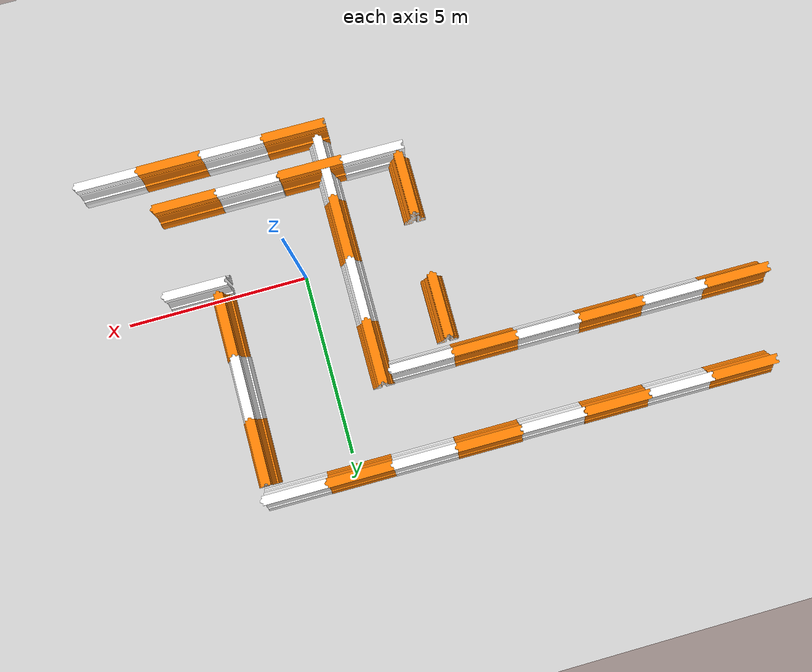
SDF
<sdf version="1.7">
 <world name="default">
  <model name="ground_plane">
   <static>1</static>
   <link name="link">
    <collision name="collision">
     <geometry><plane><normal>0 0 1</normal><size>100 100</size></plane></geometry>
     <surface><friction><ode><mu>100</mu><mu2>50</mu2></ode></friction></surface>
    </collision>
    <visual name="visual">
     <cast_shadows>0</cast_shadows>
     <geometry><plane><normal>0 0 1</normal><size>100 100</size></plane></geometry>
     <material>
      <script><uri>file://media/materials/scripts/gazebo.material</uri><name>Gazebo/Grey</name></script>
     </material>
    </visual>
   </link>
  </model>
  <model name="drc_practice_organge_jersey_barrier_1_clone">
   <static>1</static>
   <link name="link">
    <visual name="visual">
     <geometry>
      <mesh><uri>model://drc_practice_orange_jersey_barrier/meshes/jersey_barrier.dae</uri></mesh>
     </geometry>
    </visual>
    <collision name="collision">
     <geometry>
      <mesh><uri>model://drc_practice_orange_jersey_barrier/meshes/jersey_barrier.dae</uri></mesh>
     </geometry>
    </collision>
   </link>
   <pose>2.57818 -2.69671 0 0 -0 1.5707</pose>
  </model>
  <model name="drc_practice_white_jersey_barrier_clone">
   <static>1</static>
   <link name="link">
    <visual name="visual">
     <geometry>
      <mesh><uri>model://drc_practice_white_jersey_barrier/meshes/jersey_barrier.dae</uri></mesh>
     </geometry>
    </visual>
    <collision name="collision">
     <geometry>
      <mesh><uri>model://drc_practice_white_jersey_barrier/meshes/jersey_barrier.dae</uri></mesh>
     </geometry>
    </collision>
   </link>
   <pose>0.829118 -2.69359 0 0 -0 1.5707</pose>
  </model>
  <model name="drc_practice_organge_jersey_barrier_1_clone_clone">
   <static>1</static>
   <link name="link">
    <visual name="visual">
     <geometry>
      <mesh><uri>model://drc_practice_orange_jersey_barrier/meshes/jersey_barrier.dae</uri></mesh>
     </geometry>
    </visual>
    <collision name="collision">
     <geometry>
      <mesh><uri>model://drc_practice_orange_jersey_barrier/meshes/jersey_barrier.dae</uri></mesh>
     </geometry>
    </collision>
   </link>
   <pose>-0.942221 -2.70037 0 0 -0 1.5707</pose>
  </model>
  <model name="drc_practice_organge_jersey_barrier_0_clone_0">
   <static>1</static>
   <link name="link">
    <visual name="visual">
     <geometry>
      <mesh><uri>model://drc_practice_orange_jersey_barrier/meshes/jersey_barrier.dae</uri></mesh>
     </geometry>
    </visual>
    <collision name="collision">
     <geometry>
      <mesh><uri>model://drc_practice_orange_jersey_barrier/meshes/jersey_barrier.dae</uri></mesh>
     </geometry>
    </collision>
   </link>
   <pose>-3.31318 1.87553 0 0 -0 0</pose>
  </model>
  <model name="drc_practice_white_jersey_barrier_clone_clone_0">
   <static>1</static>
   <link name="link">
    <visual name="visual">
     <geometry>
      <mesh><uri>model://drc_practice_white_jersey_barrier/meshes/jersey_barrier.dae</uri></mesh>
     </geometry>
    </visual>
    <collision name="collision">
     <geometry>
      <mesh><uri>model://drc_practice_white_jersey_barrier/meshes/jersey_barrier.dae</uri></mesh>
     </geometry>
    </collision>
   </link>
   <pose>-2.67869 -2.67276 0 0 -0 1.5707</pose>
  </model>
  <model name="drc_practice_organge_jersey_barrier_0_clone_clone">
   <static>1</static>
   <link name="link">
    <visual name="visual">
     <geometry>
      <mesh><uri>model://drc_practice_orange_jersey_barrier/meshes/jersey_barrier.dae</uri></mesh>
     </geometry>
    </visual>
    <collision name="collision">
     <geometry>
      <mesh><uri>model://drc_practice_orange_jersey_barrier/meshes/jersey_barrier.dae</uri></mesh>
     </geometry>
    </collision>
   </link>
   <pose>2.31138 0.862878 0 0 -0 0</pose>
  </model>
  <model name="drc_practice_white_jersey_barrier_clone_0_clone">
   <static>1</static>
   <link name="link">
    <visual name="visual">
     <geometry>
      <mesh><uri>model://drc_practice_white_jersey_barrier/meshes/jersey_barrier.dae</uri></mesh>
     </geometry>
    </visual>
    <collision name="collision">
     <geometry>
      <mesh><uri>model://drc_practice_white_jersey_barrier/meshes/jersey_barrier.dae</uri></mesh>
     </geometry>
    </collision>
   </link>
   <pose>2.30247 2.60242 0 0 -0 0</pose>
  </model>
  <model name="drc_practice_white_jersey_barrier_clone_clone_clone">
   <static>1</static>
   <link name="link">
    <visual name="visual">
     <geometry>
      <mesh><uri>model://drc_practice_white_jersey_barrier/meshes/jersey_barrier.dae</uri></mesh>
     </geometry>
    </visual>
    <collision name="collision">
     <geometry>
      <mesh><uri>model://drc_practice_white_jersey_barrier/meshes/jersey_barrier.dae</uri></mesh>
     </geometry>
    </collision>
   </link>
   <pose>2.86919 -0.302325 0 0 -0 1.5707</pose>
  </model>
  <model name="drc_practice_organge_jersey_barrier_0_clone_0_clone_clone">
   <static>1</static>
   <link name="link">
    <visual name="visual">
     <geometry>
      <mesh><uri>model://drc_practice_orange_jersey_barrier/meshes/jersey_barrier.dae</uri></mesh>
     </geometry>
    </visual>
    <collision name="collision">
     <geometry>
      <mesh><uri>model://drc_practice_orange_jersey_barrier/meshes/jersey_barrier.dae</uri></mesh>
     </geometry>
    </collision>
   </link>
   <pose>-1.31687 -0.878506 0 0 -0 0</pose>
  </model>
  <model name="drc_practice_white_jersey_barrier_clone_1_clone">
   <static>1</static>
   <link name="link">
    <visual name="visual">
     <geometry>
      <mesh><uri>model://drc_practice_white_jersey_barrier/meshes/jersey_barrier.dae</uri></mesh>
     </geometry>
    </visual>
    <collision name="collision">
     <geometry>
      <mesh><uri>model://drc_practice_white_jersey_barrier/meshes/jersey_barrier.dae</uri></mesh>
     </geometry>
    </collision>
   </link>
   <pose>-1.31231 0.867307 0 0 -0 0</pose>
  </model>
  <model name="drc_practice_organge_jersey_barrier_0_clone_0_clone">
   <static>1</static>
   <link name="link">
    <visual name="visual">
     <geometry>
      <mesh><uri>model://drc_practice_orange_jersey_barrier/meshes/jersey_barrier.dae</uri></mesh>
     </geometry>
    </visual>
    <collision name="collision">
     <geometry>
      <mesh><uri>model://drc_practice_orange_jersey_barrier/meshes/jersey_barrier.dae</uri></mesh>
     </geometry>
    </collision>
   </link>
   <pose>-3.33024 -1.58529 0 0 -0 0</pose>
  </model>
  <model name="drc_practice_organge_jersey_barrier_0_clone_0_clone_0">
   <static>1</static>
   <link name="link">
    <visual name="visual">
     <geometry>
      <mesh><uri>model://drc_practice_orange_jersey_barrier/meshes/jersey_barrier.dae</uri></mesh>
     </geometry>
    </visual>
    <collision name="collision">
     <geometry>
      <mesh><uri>model://drc_practice_orange_jersey_barrier/meshes/jersey_barrier.dae</uri></mesh>
     </geometry>
    </collision>
   </link>
   <pose>-1.3008 2.61343 0 0 -0 0</pose>
  </model>
  <model name="drc_practice_white_jersey_barrier_clone_1_clone_clone">
   <static>1</static>
   <link name="link">
    <visual name="visual">
     <geometry>
      <mesh><uri>model://drc_practice_white_jersey_barrier/meshes/jersey_barrier.dae</uri></mesh>
     </geometry>
    </visual>
    <collision name="collision">
     <geometry>
      <mesh><uri>model://drc_practice_white_jersey_barrier/meshes/jersey_barrier.dae</uri></mesh>
     </geometry>
    </collision>
   </link>
   <pose>-1.32394 -2.62974 0 0 -0 0</pose>
  </model>
  <model name="drc_practice_organge_jersey_barrier_1_clone_clone_clone_clone">
   <static>1</static>
   <link name="link">
    <visual name="visual">
     <geometry>
      <mesh><uri>model://drc_practice_orange_jersey_barrier/meshes/jersey_barrier.dae</uri></mesh>
     </geometry>
    </visual>
    <collision name="collision">
     <geometry>
      <mesh><uri>model://drc_practice_orange_jersey_barrier/meshes/jersey_barrier.dae</uri></mesh>
     </geometry>
    </collision>
   </link>
   <pose>-0.767726 -3.83305 0 0 -0 1.5707</pose>
  </model>
  <model name="drc_practice_white_jersey_barrier_clone_clone_1">
   <static>1</static>
   <link name="link">
    <visual name="visual">
     <geometry>
      <mesh><uri>model://drc_practice_white_jersey_barrier/meshes/jersey_barrier.dae</uri></mesh>
     </geometry>
    </visual>
    <collision name="collision">
     <geometry>
      <mesh><uri>model://drc_practice_white_jersey_barrier/meshes/jersey_barrier.dae</uri></mesh>
     </geometry>
    </collision>
   </link>
   <pose>0.983586 -3.83584 0 0 -0 1.5707</pose>
  </model>
  <model name="drc_practice_organge_jersey_barrier_1_clone_clone_clone">
   <static>1</static>
   <link name="link">
    <visual name="visual">
     <geometry>
      <mesh><uri>model://drc_practice_orange_jersey_barrier/meshes/jersey_barrier.dae</uri></mesh>
     </geometry>
    </visual>
    <collision name="collision">
     <geometry>
      <mesh><uri>model://drc_practice_orange_jersey_barrier/meshes/jersey_barrier.dae</uri></mesh>
     </geometry>
    </collision>
   </link>
   <pose>2.73509 -3.84784 0 0 -0 1.5707</pose>
  </model>
  <model name="drc_practice_white_jersey_barrier_clone_clone_1_clone">
   <static>1</static>
   <link name="link">
    <visual name="visual">
     <geometry>
      <mesh><uri>model://drc_practice_white_jersey_barrier/meshes/jersey_barrier.dae</uri></mesh>
     </geometry>
    </visual>
    <collision name="collision">
     <geometry>
      <mesh><uri>model://drc_practice_white_jersey_barrier/meshes/jersey_barrier.dae</uri></mesh>
     </geometry>
    </collision>
   </link>
   <pose>4.48621 -3.852 0 0 -0 1.5707</pose>
  </model>
  <model name="drc_practice_organge_jersey_barrier_0_clone_0_clone_1">
   <static>1</static>
   <link name="link">
    <visual name="visual">
     <geometry>
      <mesh><uri>model://drc_practice_orange_jersey_barrier/meshes/jersey_barrier.dae</uri></mesh>
     </geometry>
    </visual>
    <collision name="collision">
     <geometry>
      <mesh><uri>model://drc_practice_orange_jersey_barrier/meshes/jersey_barrier.dae</uri></mesh>
     </geometry>
    </collision>
   </link>
   <pose>2.31139 4.35051 0 0 -0 0</pose>
  </model>
  <model name="drc_practice_white_jersey_barrier_clone_clone_0_clone">
   <static>1</static>
   <link name="link">
    <visual name="visual">
     <geometry>
      <mesh><uri>model://drc_practice_white_jersey_barrier/meshes/jersey_barrier.dae</uri></mesh>
     </geometry>
    </visual>
    <collision name="collision">
     <geometry>
      <mesh><uri>model://drc_practice_white_jersey_barrier/meshes/jersey_barrier.dae</uri></mesh>
     </geometry>
    </collision>
   </link>
   <pose>1.64216 5.58178 0 0 -0 1.5707</pose>
  </model>
  <model name="drc_practice_organge_jersey_barrier_1_clone_clone_clone_0">
   <static>1</static>
   <link name="link">
    <visual name="visual">
     <geometry>
      <mesh><uri>model://drc_practice_orange_jersey_barrier/meshes/jersey_barrier.dae</uri></mesh>
     </geometry>
    </visual>
    <collision name="collision">
     <geometry>
      <mesh><uri>model://drc_practice_orange_jersey_barrier/meshes/jersey_barrier.dae</uri></mesh>
     </geometry>
    </collision>
   </link>
   <pose>-0.107583 5.59495 0 0 -0 1.5707</pose>
  </model>
  <model name="drc_practice_white_jersey_barrier_clone_clone_0_clone_clone">
   <static>1</static>
   <link name="link">
    <visual name="visual">
     <geometry>
      <mesh><uri>model://drc_practice_white_jersey_barrier/meshes/jersey_barrier.dae</uri></mesh>
     </geometry>
    </visual>
    <collision name="collision">
     <geometry>
      <mesh><uri>model://drc_practice_white_jersey_barrier/meshes/jersey_barrier.dae</uri></mesh>
     </geometry>
    </collision>
   </link>
   <pose>-1.85597 5.61076 0 0 -0 1.5707</pose>
  </model>
  <model name="drc_practice_white_jersey_barrier_clone_clone_0_clone_clone_0">
   <static>1</static>
   <link name="link">
    <visual name="visual">
     <geometry>
      <mesh><uri>model://drc_practice_white_jersey_barrier/meshes/jersey_barrier.dae</uri></mesh>
     </geometry>
    </visual>
    <collision name="collision">
     <geometry>
      <mesh><uri>model://drc_practice_white_jersey_barrier/meshes/jersey_barrier.dae</uri></mesh>
     </geometry>
    </collision>
   </link>
   <pose>-2.44523 3.18144 0 0 -0 1.5707</pose>
  </model>
  <model name="drc_practice_organge_jersey_barrier_1_clone_clone_clone_0_clone">
   <static>1</static>
   <link name="link">
    <visual name="visual">
     <geometry>
      <mesh><uri>model://drc_practice_orange_jersey_barrier/meshes/jersey_barrier.dae</uri></mesh>
     </geometry>
    </visual>
    <collision name="collision">
     <geometry>
      <mesh><uri>model://drc_practice_orange_jersey_barrier/meshes/jersey_barrier.dae</uri></mesh>
     </geometry>
    </collision>
   </link>
   <pose>-4.196 3.18198 0 0 -0 1.5707</pose>
  </model>
  <model name="drc_practice_organge_jersey_barrier_1_clone_clone_clone_0_clone_0">
   <static>1</static>
   <link name="link">
    <visual name="visual">
     <geometry>
      <mesh><uri>model://drc_practice_orange_jersey_barrier/meshes/jersey_barrier.dae</uri></mesh>
     </geometry>
    </visual>
    <collision name="collision">
     <geometry>
      <mesh><uri>model://drc_practice_orange_jersey_barrier/meshes/jersey_barrier.dae</uri></mesh>
     </geometry>
    </collision>
   </link>
   <pose>-3.60749 5.61576 0 0 -0 1.5707</pose>
  </model>
  <model name="drc_practice_white_jersey_barrier_clone_clone_0_clone_clone_0_clone_0">
   <static>1</static>
   <link name="link">
    <visual name="visual">
     <geometry>
      <mesh><uri>model://drc_practice_white_jersey_barrier/meshes/jersey_barrier.dae</uri></mesh>
     </geometry>
    </visual>
    <collision name="collision">
     <geometry>
      <mesh><uri>model://drc_practice_white_jersey_barrier/meshes/jersey_barrier.dae</uri></mesh>
     </geometry>
    </collision>
   </link>
   <pose>-5.36513 5.60492 0 0 -0 1.5707</pose>
  </model>
  <model name="drc_practice_white_jersey_barrier_clone_clone_0_clone_clone_0_clone_1">
   <static>1</static>
   <link name="link">
    <visual name="visual">
     <geometry>
      <mesh><uri>model://drc_practice_white_jersey_barrier/meshes/jersey_barrier.dae</uri></mesh>
     </geometry>
    </visual>
    <collision name="collision">
     <geometry>
      <mesh><uri>model://drc_practice_white_jersey_barrier/meshes/jersey_barrier.dae</uri></mesh>
     </geometry>
    </collision>
   </link>
   <pose>-5.94465 3.19273 0 0 -0 1.5707</pose>
  </model>
  <model name="drc_practice_organge_jersey_barrier_1_clone_clone_clone_clone_clone_1">
   <static>1</static>
   <link name="link">
    <visual name="visual">
     <geometry>
      <mesh><uri>model://drc_practice_orange_jersey_barrier/meshes/jersey_barrier.dae</uri></mesh>
     </geometry>
    </visual>
    <collision name="collision">
     <geometry>
      <mesh><uri>model://drc_practice_orange_jersey_barrier/meshes/jersey_barrier.dae</uri></mesh>
     </geometry>
    </collision>
   </link>
   <pose>-7.12081 5.61938 0 0 -0 1.5707</pose>
  </model>
  <model name="drc_practice_organge_jersey_barrier_1_clone_clone_clone_clone_clone_2">
   <static>1</static>
   <link name="link">
    <visual name="visual">
     <geometry>
      <mesh><uri>model://drc_practice_orange_jersey_barrier/meshes/jersey_barrier.dae</uri></mesh>
     </geometry>
    </visual>
    <collision name="collision">
     <geometry>
      <mesh><uri>model://drc_practice_orange_jersey_barrier/meshes/jersey_barrier.dae</uri></mesh>
     </geometry>
    </collision>
   </link>
   <pose>-7.6982 3.19881 0 0 -0 1.5707</pose>
  </model>
  <model name="drc_practice_white_jersey_barrier_clone_clone_1_clone_clone">
   <static>1</static>
   <link name="link">
    <visual name="visual">
     <geometry>
      <mesh><uri>model://drc_practice_white_jersey_barrier/meshes/jersey_barrier.dae</uri></mesh>
     </geometry>
    </visual>
    <collision name="collision">
     <geometry>
      <mesh><uri>model://drc_practice_white_jersey_barrier/meshes/jersey_barrier.dae</uri></mesh>
     </geometry>
    </collision>
   </link>
   <pose>-8.88335 5.62037 0 0 -0 1.5707</pose>
  </model>
  <model name="drc_practice_white_jersey_barrier_clone_clone_1_clone_clone_0">
   <static>1</static>
   <link name="link">
    <visual name="visual">
     <geometry>
      <mesh><uri>model://drc_practice_white_jersey_barrier/meshes/jersey_barrier.dae</uri></mesh>
     </geometry>
    </visual>
    <collision name="collision">
     <geometry>
      <mesh><uri>model://drc_practice_white_jersey_barrier/meshes/jersey_barrier.dae</uri></mesh>
     </geometry>
    </collision>
   </link>
   <pose>-9.44659 3.20838 0 0 -0 1.5707</pose>
  </model>
  <model name="drc_practice_organge_jersey_barrier_1_clone_clone_clone_clone_clone_2_clone_0">
   <static>1</static>
   <link name="link">
    <visual name="visual">
     <geometry>
      <mesh><uri>model://drc_practice_orange_jersey_barrier/meshes/jersey_barrier.dae</uri></mesh>
     </geometry>
    </visual>
    <collision name="collision">
     <geometry>
      <mesh><uri>model://drc_practice_orange_jersey_barrier/meshes/jersey_barrier.dae</uri></mesh>
     </geometry>
    </collision>
   </link>
   <pose>-10.6287 5.62409 0 0 -0 1.5707</pose>
  </model>
  <model name="drc_practice_organge_jersey_barrier_1_clone_clone_clone_clone_clone_2_clone_1">
   <static>1</static>
   <link name="link">
    <visual name="visual">
     <geometry>
      <mesh><uri>model://drc_practice_orange_jersey_barrier/meshes/jersey_barrier.dae</uri></mesh>
     </geometry>
    </visual>
    <collision name="collision">
     <geometry>
      <mesh><uri>model://drc_practice_orange_jersey_barrier/meshes/jersey_barrier.dae</uri></mesh>
     </geometry>
    </collision>
   </link>
   <pose>-11.1978 3.21588 0 0 -0 1.5707</pose>
  </model>
 </world>
</sdf>
